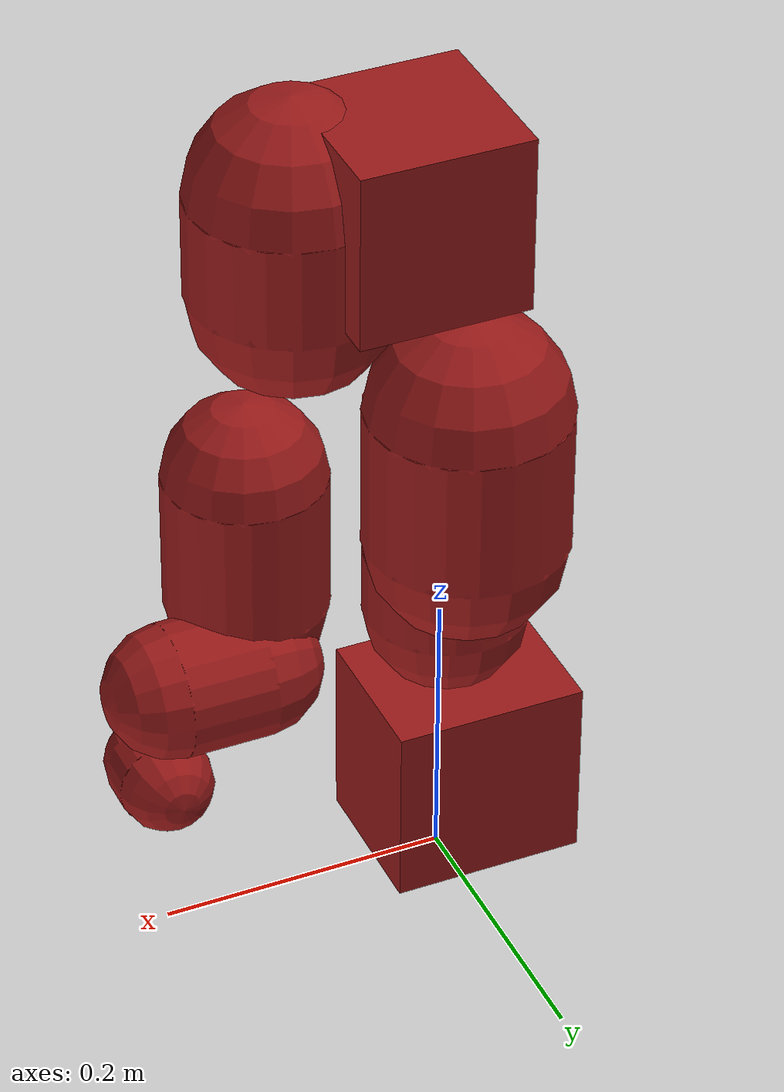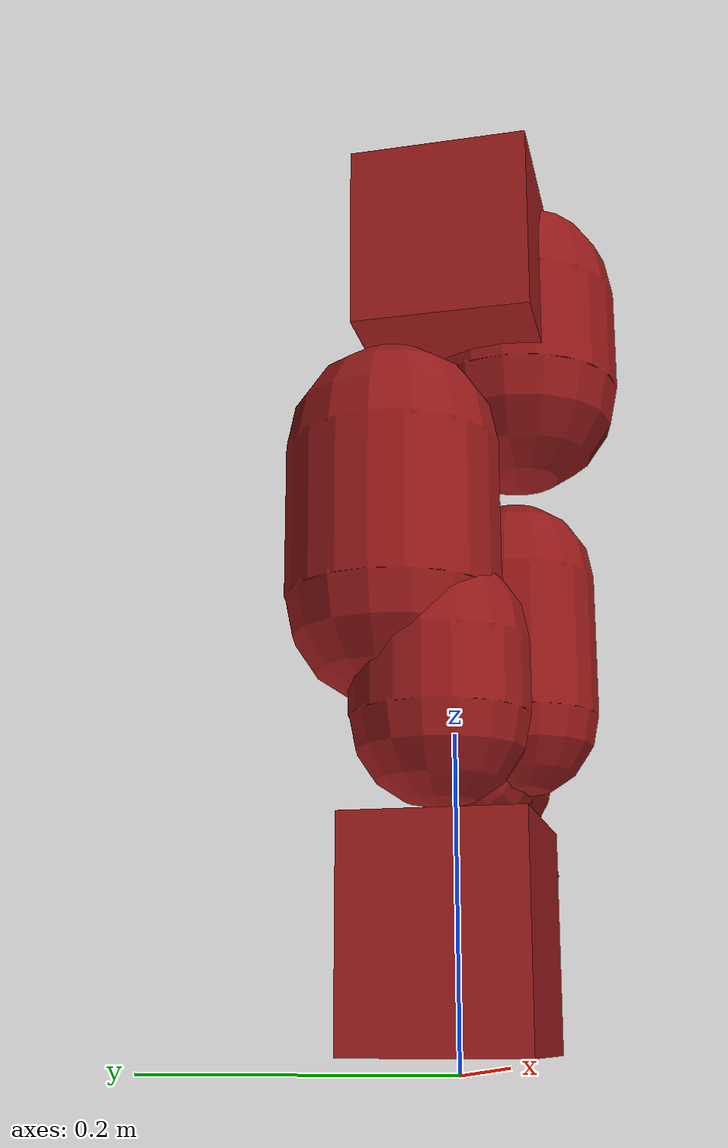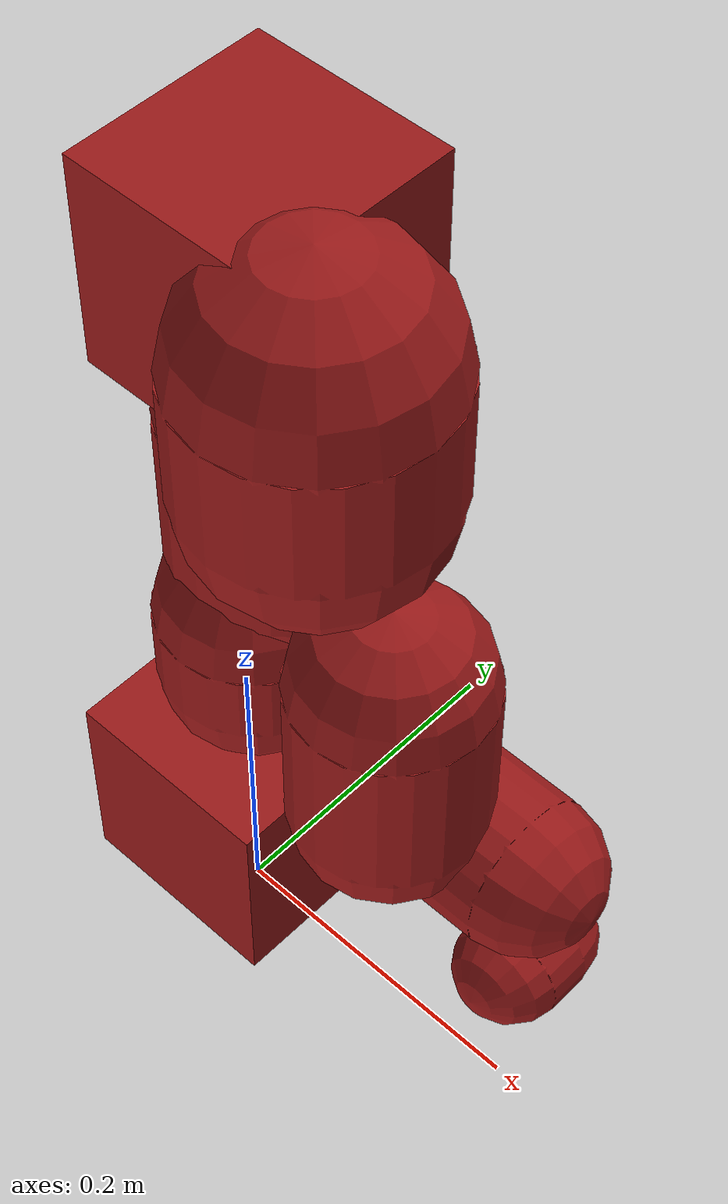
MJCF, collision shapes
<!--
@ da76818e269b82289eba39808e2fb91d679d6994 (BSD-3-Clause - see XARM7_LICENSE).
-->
<mujoco model="xarm7">
  <compiler angle="radian" autolimits="true" meshdir="meshes" />
  <asset>
    <material name="white" rgba="1 1 1 1" />
    <material name="gray" rgba="0.753 0.753 0.753 1" />
    <mesh file="link_base.stl" />
    <mesh file="link1.stl" />
    <mesh file="link2.stl" />
    <mesh file="link3.stl" />
    <mesh file="link4.stl" />
    <mesh file="link5.stl" />
    <mesh file="link6.stl" />
    <mesh file="link7.stl" />
    <mesh file="end_tool.stl" />
  </asset>
  <default>
    <default class="xarm7">
      <geom type="mesh" material="white" />
      <joint axis="0 0 1" armature="0.1" range="-6.28319 6.28319" frictionloss="1" />
      <general biastype="affine" ctrlrange="-6.28319 6.28319" />
      <default class="size1">
        <joint damping="10" />
        <general gainprm="1500" biasprm="0 -1500 -150" forcerange="-50 50" />
      </default>
      <default class="size2">
        <joint damping="5" />
        <general gainprm="1000" biasprm="0 -1000 -100" forcerange="-30 30" />
      </default>
      <default class="size3">
        <joint damping="2" />
        <general gainprm="800" biasprm="0 -800 -80" forcerange="-20 20" />
      </default>
      <site size="0.001" rgba="1 0 0 1" group="4" />
      <default class="visual">
        <geom type="mesh" contype="0" conaffinity="0" group="2" />
      </default>
      <default class="collision">
        <geom group="3" rgba="0.6 0.1 0.1 0.35" />
      </default>
    </default>
  </default>
  <worldbody>
    <body name="link_base" pos="0 0 0" childclass="xarm7">
      <inertial pos="-0.021131 -0.0016302 0.056488" quat="0.696843 0.20176 0.10388 0.680376" mass="0.88556" diaginertia="0.00382023 0.00335282 0.00167725" />
      <geom mesh="link_base" class="visual" />
      <geom class="collision" type="box" size="0.066753 0.05418 0.066564" pos="-0.014691 2.1991e-09 0.0774" />
      <body name="link1" pos="0 0 0.267">
        <inertial pos="-0.0002 0.02905 -0.01233" quat="0.978953 -0.202769 -0.00441617 -0.0227264" mass="2.382" diaginertia="0.00569127 0.00533384 0.00293865" />
        <joint name="joint1" class="size1" />
        <geom mesh="link1" class="visual" />
        <geom class="collision" type="capsule" size="0.056694 0.02335" pos="-5.9453e-05 0.0093717 -0.031956" />
        <body name="link2" quat="1 -1 0 0">
          <inertial pos="0.00022 -0.12856 0.01735" quat="0.50198 0.86483 -0.00778841 0.00483285" mass="1.869" diaginertia="0.00959898 0.00937717 0.00201315" />
          <joint name="joint2" range="-2.059 2.0944" class="size1" />
          <geom mesh="link2" class="visual" />
          <geom class="collision" type="capsule" size="0.069338 0.050234" pos="-7.918e-05 -0.072208 0.038382" quat="0.7071068 -0.7071068 0 0" />
          <body name="link3" pos="0 -0.293 0" quat="1 1 0 0">
            <inertial pos="0.0466 -0.02463 -0.00768" quat="0.913819 0.289775 0.281481 -0.0416455" mass="1.6383" diaginertia="0.00351721 0.00294089 0.00195868" />
            <joint name="joint3" class="size2" />
            <geom mesh="link3" class="visual" />
            <geom class="collision" type="box" size="0.059025 0.058603 0.061864" pos="0.02622 0.00094822 -0.029166" />
            <body name="link4" pos="0.0525 0 0" quat="1 1 0 0">
              <inertial pos="0.07047 -0.11575 0.012" quat="0.422108 0.852026 -0.126025 0.282832" mass="1.7269" diaginertia="0.00657137 0.00647948 0.00186763" />
              <joint name="joint4" range="-0.19198 3.927" class="size2" />
              <geom mesh="link4" class="visual" />
              <geom class="collision" type="capsule" size="0.070086 0.035857" pos="0.038765 -0.063233 0.032207" quat="0.7071068 -0.7071068 0 0" />
              <body name="link5" pos="0.0775 -0.3425 0" quat="1 1 0 0">
                <inertial pos="-0.00032 0.01604 -0.026" quat="0.999311 -0.0304457 0.000577067 0.0212082" mass="1.3203" diaginertia="0.00534729 0.00499076 0.0013489" />
                <joint name="joint5" class="size2" />
                <geom mesh="link5" class="visual" />
                <geom class="collision" type="capsule" size="0.055463 0.049784" pos="2.0561e-05 0.021939 -0.067753" />
                <body name="link6" quat="1 1 0 0">
                  <inertial pos="0.06469 0.03278 0.02141" quat="-0.217672 0.772419 0.16258 0.574069" mass="1.325" diaginertia="0.00245421 0.00221646 0.00107273" />
                  <joint name="joint6" range="-1.69297 3.14159" class="size3" />
                  <geom mesh="link6" class="visual" />
                  <geom class="collision" type="capsule" size="0.04559 0.029903" pos="0.037999 0.015509 0.010204" quat="0.7071068 0 0.7071068 0" />
                  <body name="link7" pos="0.076 0.097 0" quat="1 -1 0 0">
                    <inertial pos="0 -0.00677 -0.01098" quat="0.487612 0.512088 -0.512088 0.487612" mass="0.17" diaginertia="0.000132176 9.3e-05 5.85236e-05" />
                    <joint name="joint7" class="size3" />
                    <geom material="gray" mesh="end_tool" class="visual" />
                    <geom class="collision" type="capsule" size="0.03239 0.012458" pos="6.7963e-05 -0.0071516 -0.0135" quat="0.7071068 -0.7071068 0 0" />
                    <site name="attachment_site" />
                  </body>
                </body>
              </body>
            </body>
          </body>
        </body>
      </body>
    </body>
  </worldbody>
  <actuator>
    <general name="act1" joint="joint1" class="size1" />
    <general name="act2" joint="joint2" class="size1" ctrlrange="-2.059 2.0944" />
    <general name="act3" joint="joint3" class="size2" />
    <general name="act4" joint="joint4" class="size2" ctrlrange="-0.19198 3.927" />
    <general name="act5" joint="joint5" class="size2" />
    <general name="act6" joint="joint6" class="size3" ctrlrange="-1.69297 3.14159" />
    <general name="act7" joint="joint7" class="size3" />
  </actuator>
  <keyframe>
    <key name="home" qpos="0 -.247 0 .909 0 1.15644 0" ctrl="0 -.247 0 .909 0 1.15644 0" />
  </keyframe>
</mujoco>
